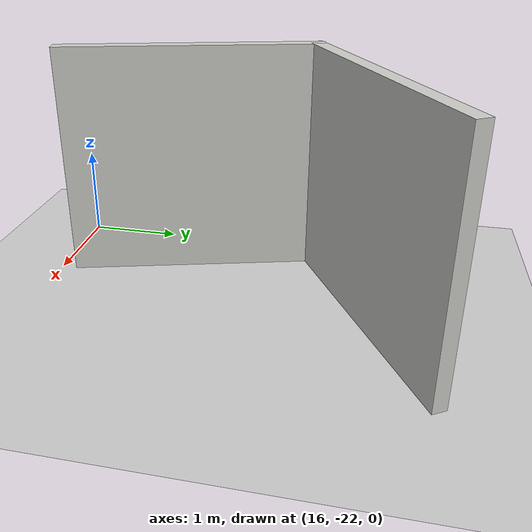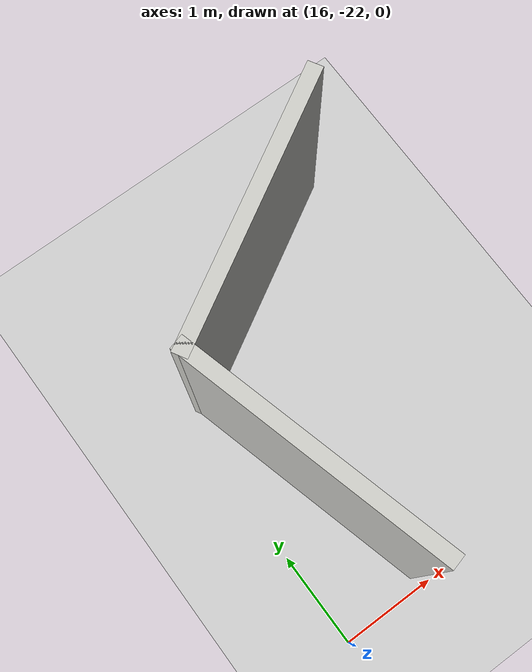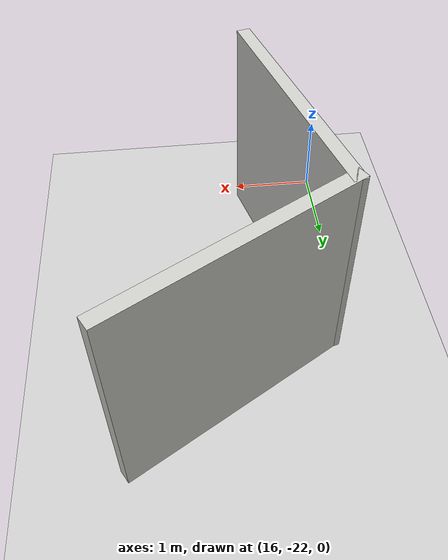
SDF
<sdf version="1.6">
 <world name="default">
  <model name="ground_plane">
   <pose>50 50 0 0 -0 0</pose>
   <static>1</static>
   <link name="link">
    <collision name="collision">
     <geometry><plane><normal>0 0 1</normal><size>100 100</size></plane></geometry>
     <surface><friction><ode><mu>100</mu><mu2>50</mu2></ode></friction></surface>
    </collision>
    <visual name="visual">
     <cast_shadows>0</cast_shadows>
     <geometry><plane><normal>0 0 1</normal><size>100 100</size></plane></geometry>
     <material>
      <script><uri>file://media/materials/scripts/gazebo.material</uri><name>Gazebo/Grey</name></script>
     </material>
    </visual>
   </link>
  </model>
  <model name="maze_1">
   <pose>17.3845 3.82743 0 0 -0 1.57331</pose>
   <link name="Wall_117">
    <collision name="Wall_117_Collision">
     <geometry><box><size>2.75 0.15 2.5</size></box></geometry>
     <pose>0 0 1.25 0 -0 0</pose>
    </collision>
    <visual name="Wall_117_Visual">
     <pose>0 0 1.25 0 -0 0</pose>
     <geometry><box><size>2.75 0.15 2.5</size></box></geometry>
     <material>
      <script><uri>file://media/materials/scripts/gazebo.material</uri><name>Gazebo/CeilingTiled</name></script>
      <ambient>1 1 1 1</ambient>
     </material>
     <meta><layer>0</layer></meta>
    </visual>
    <pose>-22.4533 0.081949 0 0 -0 2.0944</pose>
   </link>
   <link name="Wall_118">
    <collision name="Wall_118_Collision">
     <geometry><box><size>2.75 0.15 2.5</size></box></geometry>
     <pose>0 0 1.25 0 -0 0</pose>
    </collision>
    <visual name="Wall_118_Visual">
     <pose>0 0 1.25 0 -0 0</pose>
     <geometry><box><size>2.75 0.15 2.5</size></box></geometry>
     <material>
      <script><uri>file://media/materials/scripts/gazebo.material</uri><name>Gazebo/CeilingTiled</name></script>
      <ambient>1 1 1 1</ambient>
     </material>
     <meta><layer>0</layer></meta>
    </visual>
    <pose>-24.359 0.871317 0 0 -0 -2.87979</pose>
   </link>
   <static>1</static>
  </model>
 </world>
</sdf>
